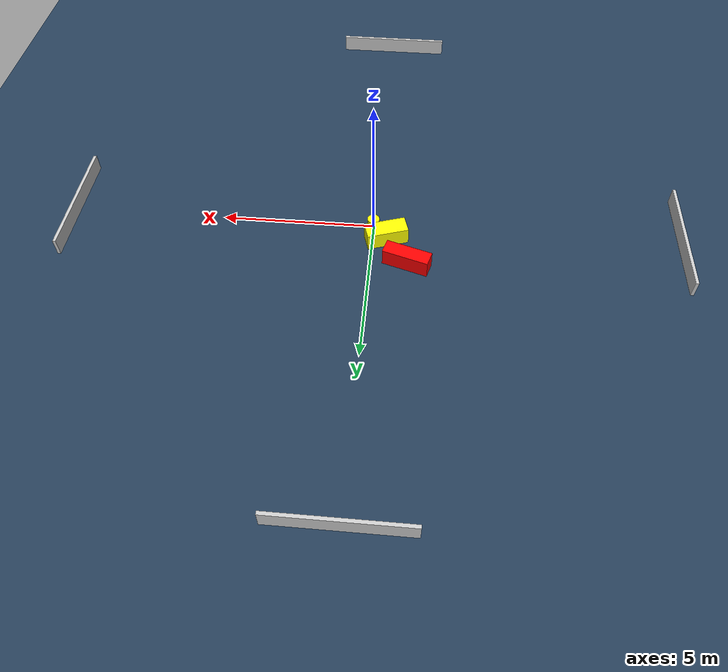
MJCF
<?xml version="1.0" ?>
<mujoco model="generated_environment">
  <option timestep="0.01" integrator="RK4" cone="elliptic"/>
  <default>
    <geom density="1"/>
  </default>
  <asset>
    <texture builtin="gradient" height="3072" name="skybox" rgb1="0.3 0.5 0.7" rgb2="0 0 0" type="skybox" width="512"/>
    <texture builtin="checker" height="300" name="groundplane" rgb1="0.2 0.3 0.4" rgb2="0.1 0.2 0.3" type="2d" width="300"/>
    <material name="groundplane" reflectance="0.2" texrepeat="5 5" texture="groundplane"/>
  </asset>
  <worldbody>
    <light dir="0 0 -1" directional="true" pos="0 0 1.5"/>
    <geom condim="3" friction="0.5 0.005 0.001" material="groundplane" name="floor" pos="0 0 0" size="0 0 0.05" type="plane"/>
    <body name="walls">
      <geom name="wall_1" condim="4" pos="-10.0 0.0 0.3" rgba="0.800000011920929 0.800000011920929 0.800000011920929 1.0" size="0.05 2.0 0.3" type="box"/>
      <geom name="wall_2" condim="4" pos="10.0 0.0 0.3" rgba="0.800000011920929 0.800000011920929 0.800000011920929 1.0" size="0.05 2.0 0.3" type="box"/>
      <geom name="wall_3" condim="4" pos="0.0 -10.0 0.3" rgba="0.800000011920929 0.800000011920929 0.800000011920929 1.0" size="2.0 0.05 0.3" type="box"/>
      <geom name="wall_4" condim="4" pos="0.0 10.0 0.3" rgba="0.800000011920929 0.800000011920929 0.800000011920929 1.0" size="2.0 0.05 0.3" type="box"/>
    </body>
    <body name="robot">
      <joint name="joint_x" type="slide" pos="0 0 0" axis="1 0 0"/>
      <joint name="joint_y" type="slide" pos="0 0 0" axis="0 1 0"/>
      <geom name="robot" type="cylinder" pos="0.0 0.0 0.2" size="0.2 0.2 0.0" mass="5.0" friction="1.0 0.005 0.0001" condim="4" rgba="1.0 1.0 0.0 1.0"/>
    </body>
    <body name="obstacle_1_movable">
      <geom name="obstacle_1_movable" condim="4" pos="-0.45410961309801456 0.5075419513087535 0.3" euler="0 0 17.83314007274836" friction="0.0 0.005 0.001" rgba="1.0 1.0 0.0 1.0" size="0.6718037638255616 0.28371745085820343 0.3" type="box" mass="0.1"/>
      <joint type="free"/>
    </body>
    <body name="obstacle_2_static">
      <geom name="obstacle_2_static" condim="4" pos="-1.1819839370892686 1.503336219441853 0.3" euler="0 0 343.2942979096646" friction="0.0 0.005 0.001" rgba="1.0 0.0 0.0 1.0" size="0.7481412257964688 0.24011135323615534 0.3" type="box"/>
    </body>
  </worldbody>
  <actuator>
    <motor name="actuator_x" joint="joint_x" gear="1" ctrlrange="-1 1"/>
    <motor name="actuator_y" joint="joint_y" gear="1" ctrlrange="-1 1"/>
  </actuator>
</mujoco>
